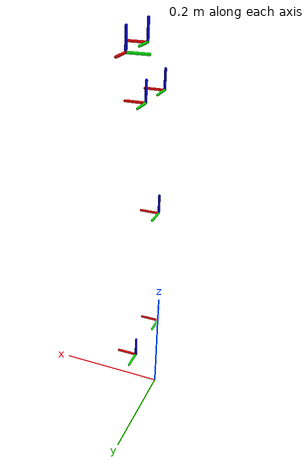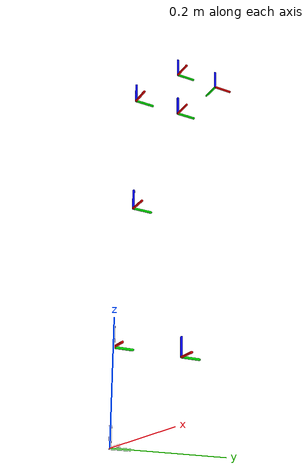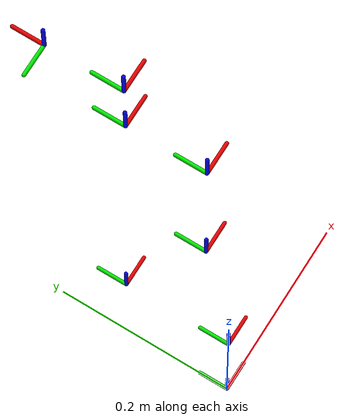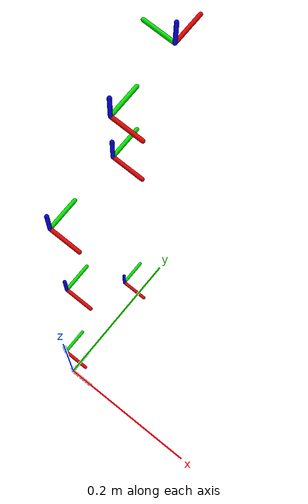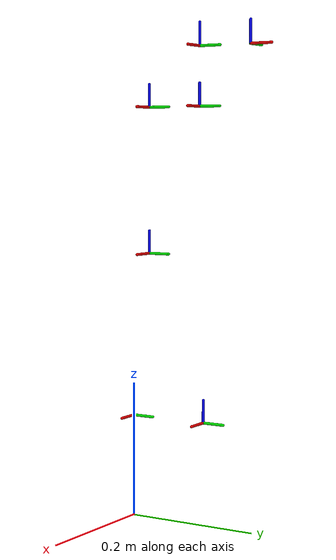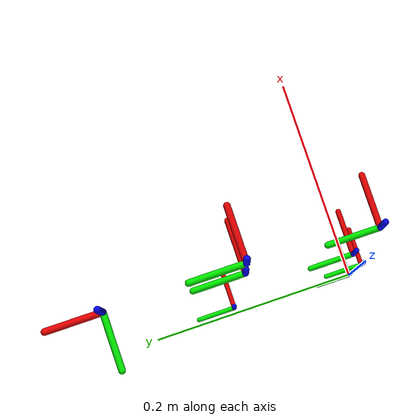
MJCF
<mujoco model="ur3">

    <option>
        <flag gravity="disable"/>
    </option>

    <compiler angle="radian" />
    <size njmax="500" nconmax="100" />
    <asset>
        <texture type="skybox" builtin="gradient" rgb1="1 1 1" rgb2="1 1 1"
                 width="256" height="256"/>
    </asset>

    <asset>
        <mesh name="base" file="base.stl" />
        <mesh name="shoulder" file="shoulder.stl" />
        <mesh name="upperarm" file="upperarm.stl" />
        <mesh name="forearm" file="forearm.stl" />
        <mesh name="wrist1" file="wrist1.stl" />
        <mesh name="wrist2" file="wrist2.stl" />
        <mesh name="wrist3" file="wrist3.stl" />
    </asset>
    <worldbody>

        <body name="base_link" pos="0 0 0">

        <geom type="capsule" rgba=".9 .0 .0 1" size="0.002" fromto="0 0 0  0.0331 0 0"/>
        <geom type="capsule" rgba=".0 .9 .0 1" size="0.002" fromto="0 0 0  0 0.0331 0"/>
        <geom type="capsule" rgba=".0 .0 .9 1" size="0.002" fromto="0 0 0  0 0 0.0331"/>

            <body name="shoulder_link" pos="0 0 0.1519">

        <geom type="capsule" rgba=".9 .0 .0 1" size="0.002" fromto="0 0 0  0.0331 0 0"/>
        <geom type="capsule" rgba=".0 .9 .0 1" size="0.002" fromto="0 0 0  0 0.0331 0"/>
        <geom type="capsule" rgba=".0 .0 .9 1" size="0.002" fromto="0 0 0  0 0 0.0331"/>

                <body name="upper_arm_link" pos="0 0.1198 0"> <!-- quat="0.707107 0 0.707107 0"> -->

        <geom type="capsule" rgba=".9 .0 .0 1" size="0.002" fromto="0 0 0  0.0331 0 0"/>
        <geom type="capsule" rgba=".0 .9 .0 1" size="0.002" fromto="0 0 0  0 0.0331 0"/>
        <geom type="capsule" rgba=".0 .0 .9 1" size="0.002" fromto="0 0 0  0 0 0.0331"/>

                    <body name="forearm_link" pos="0 -0.0925 0.24365">

        <geom type="capsule" rgba=".9 .0 .0 1" size="0.002" fromto="0 0 0  0.0331 0 0"/>
        <geom type="capsule" rgba=".0 .9 .0 1" size="0.002" fromto="0 0 0  0 0.0331 0"/>
        <geom type="capsule" rgba=".0 .0 .9 1" size="0.002" fromto="0 0 0  0 0 0.0331"/>

                        <body name="wrist_1_link" pos="0 0 0.21325"> <!-- quat="0.707107 0 0.707107 0"> -->

        <geom type="capsule" rgba=".9 .0 .0 1" size="0.002" fromto="0 0 0  0.0331 0 0"/>
        <geom type="capsule" rgba=".0 .9 .0 1" size="0.002" fromto="0 0 0  0 0.0331 0"/>
        <geom type="capsule" rgba=".0 .0 .9 1" size="0.002" fromto="0 0 0  0 0 0.0331"/>

                            <body name="wrist_2_link" pos="0 0.08505 0" >

        <geom type="capsule" rgba=".9 .0 .0 1" size="0.002" fromto="0 0 0  0.0331 0 0"/>
        <geom type="capsule" rgba=".0 .9 .0 1" size="0.002" fromto="0 0 0  0 0.0331 0"/>
        <geom type="capsule" rgba=".0 .0 .9 1" size="0.002" fromto="0 0 0  0 0 0.0331"/>

                                <body name="wrist_3_link" pos="0 0 0.08535">

        <geom type="capsule" rgba=".9 .0 .0 1" size="0.002" fromto="0 0 0  0.0331 0 0"/>
        <geom type="capsule" rgba=".0 .9 .0 1" size="0.002" fromto="0 0 0  0 0.0331 0"/>
        <geom type="capsule" rgba=".0 .0 .9 1" size="0.002" fromto="0 0 0  0 0 0.0331"/>

                                    <body name="ee_link" pos="0 0.0819 0" quat="0.707107 0 0 0.707107">

        <geom type="capsule" rgba=".9 .0 .0 1" size="0.002" fromto="0 0 0  0.0331 0 0"/>
        <geom type="capsule" rgba=".0 .9 .0 1" size="0.002" fromto="0 0 0  0 0.0331 0"/>
        <geom type="capsule" rgba=".0 .0 .9 1" size="0.002" fromto="0 0 0  0 0 0.0331"/>

                                    </body>
                                    <body name="tool0" pos="0 0.0819 0" quat="0.707107 -0.707107 0 0">

                                    </body>
                                </body>
                            </body>
                        </body>
                    </body>
                </body>
            </body>
            <body name="base" pos="0 0 0" quat="1.7949e-09 0 0 -1">
                <inertial pos="0 0 0" quat="1.7949e-09 0 0 -1" mass="0" diaginertia="0 0 0" />
            </body>
        </body>
    </worldbody>
</mujoco>
